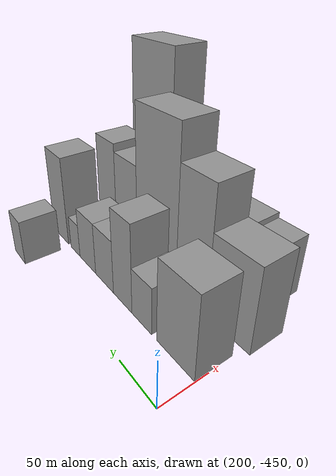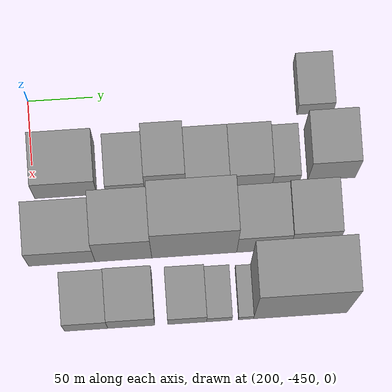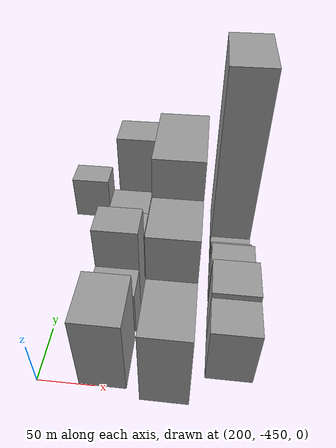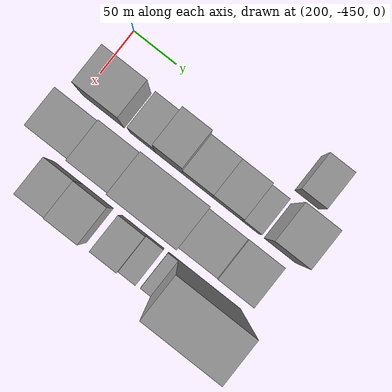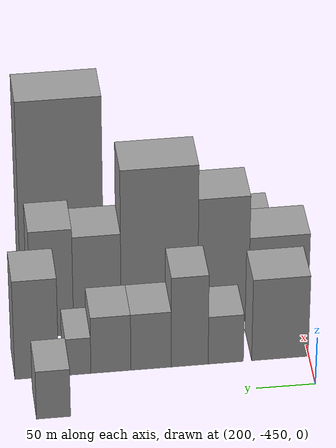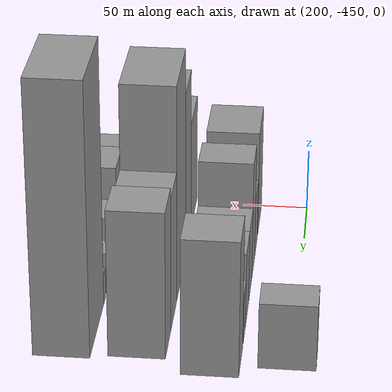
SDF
<sdf version="1.6">
 <world name="default">
  <model name="building_123">
   <static>1</static>
   <pose>204.0000 -228.6598 0 0.000000 0.000000 0.000000</pose>
   <link name="link">
    <pose>0 0 25.50 0 0 0</pose>
    <collision name="collision"><geometry><box><size>40.0000 28.3082 51.0000</size></box></geometry></collision>
    <visual name="visual">
     <cast_shadows>0</cast_shadows>
     <geometry><box><size>40.0000 28.3082 51.0000</size></box></geometry>
     <material>
      <script>
       <uri>model://grey_wall/materials/scripts</uri>
       <uri>model://grey_wall/materials/textures</uri>
       <name>vrc/grey_wall</name>
      </script>
     </material>
    </visual>
   </link>
  </model>
  <model name="building_169">
   <static>1</static>
   <pose>256.0000 -425.2638 0 0.000000 0.000000 0.000000</pose>
   <link name="link">
    <pose>0 0 43.50 0 0 0</pose>
    <collision name="collision"><geometry><box><size>40.0000 48.1281 87.0000</size></box></geometry></collision>
    <visual name="visual">
     <cast_shadows>0</cast_shadows>
     <geometry><box><size>40.0000 48.1281 87.0000</size></box></geometry>
     <material>
      <script>
       <uri>model://grey_wall/materials/scripts</uri>
       <uri>model://grey_wall/materials/textures</uri>
       <name>vrc/grey_wall</name>
      </script>
     </material>
    </visual>
   </link>
  </model>
  <model name="building_170">
   <static>1</static>
   <pose>256.0000 -379.2155 0 0.000000 0.000000 0.000000</pose>
   <link name="link">
    <pose>0 0 25.50 0 0 0</pose>
    <collision name="collision"><geometry><box><size>40.0000 29.9685 51.0000</size></box></geometry></collision>
    <visual name="visual">
     <cast_shadows>0</cast_shadows>
     <geometry><box><size>40.0000 29.9685 51.0000</size></box></geometry>
     <material>
      <script>
       <uri>model://grey_wall/materials/scripts</uri>
       <uri>model://grey_wall/materials/textures</uri>
       <name>vrc/grey_wall</name>
      </script>
     </material>
    </visual>
   </link>
  </model>
  <model name="building_171">
   <static>1</static>
   <pose>256.0000 -348.5457 0 0.000000 0.000000 0.000000</pose>
   <link name="link">
    <pose>0 0 48.00 0 0 0</pose>
    <collision name="collision"><geometry><box><size>40.0000 31.3711 96.0000</size></box></geometry></collision>
    <visual name="visual">
     <cast_shadows>0</cast_shadows>
     <geometry><box><size>40.0000 31.3711 96.0000</size></box></geometry>
     <material>
      <script>
       <uri>model://grey_wall/materials/scripts</uri>
       <uri>model://grey_wall/materials/textures</uri>
       <name>vrc/grey_wall</name>
      </script>
     </material>
    </visual>
   </link>
  </model>
  <model name="building_172">
   <static>1</static>
   <pose>256.0000 -315.7931 0 0.000000 0.000000 0.000000</pose>
   <link name="link">
    <pose>0 0 30.00 0 0 0</pose>
    <collision name="collision"><geometry><box><size>40.0000 34.1340 60.0000</size></box></geometry></collision>
    <visual name="visual">
     <cast_shadows>0</cast_shadows>
     <geometry><box><size>40.0000 34.1340 60.0000</size></box></geometry>
     <material>
      <script>
       <uri>model://grey_wall/materials/scripts</uri>
       <uri>model://grey_wall/materials/textures</uri>
       <name>vrc/grey_wall</name>
      </script>
     </material>
    </visual>
   </link>
  </model>
  <model name="building_173">
   <static>1</static>
   <pose>256.0000 -281.9143 0 0.000000 0.000000 0.000000</pose>
   <link name="link">
    <pose>0 0 30.00 0 0 0</pose>
    <collision name="collision"><geometry><box><size>40.0000 33.6235 60.0000</size></box></geometry></collision>
    <visual name="visual">
     <cast_shadows>0</cast_shadows>
     <geometry><box><size>40.0000 33.6235 60.0000</size></box></geometry>
     <material>
      <script>
       <uri>model://grey_wall/materials/scripts</uri>
       <uri>model://grey_wall/materials/textures</uri>
       <name>vrc/grey_wall</name>
      </script>
     </material>
    </visual>
   </link>
  </model>
  <model name="building_174">
   <static>1</static>
   <pose>256.0000 -254.5542 0 0.000000 0.000000 0.000000</pose>
   <link name="link">
    <pose>0 0 19.50 0 0 0</pose>
    <collision name="collision"><geometry><box><size>40.0000 21.0967 39.0000</size></box></geometry></collision>
    <visual name="visual">
     <cast_shadows>0</cast_shadows>
     <geometry><box><size>40.0000 21.0967 39.0000</size></box></geometry>
     <material>
      <script>
       <uri>model://grey_wall/materials/scripts</uri>
       <uri>model://grey_wall/materials/textures</uri>
       <name>vrc/grey_wall</name>
      </script>
     </material>
    </visual>
   </link>
  </model>
  <model name="building_175">
   <static>1</static>
   <pose>256.0000 -219.5533 0 0.000000 0.000000 0.000000</pose>
   <link name="link">
    <pose>0 0 52.50 0 0 0</pose>
    <collision name="collision"><geometry><box><size>40.0000 36.9052 105.0000</size></box></geometry></collision>
    <visual name="visual">
     <cast_shadows>0</cast_shadows>
     <geometry><box><size>40.0000 36.9052 105.0000</size></box></geometry>
     <material>
      <script>
       <uri>model://grey_wall/materials/scripts</uri>
       <uri>model://grey_wall/materials/textures</uri>
       <name>vrc/grey_wall</name>
      </script>
     </material>
    </visual>
   </link>
  </model>
  <model name="building_218">
   <static>1</static>
   <pose>308.0000 -431.4765 0 0.000000 0.000000 0.000000</pose>
   <link name="link">
    <pose>0 0 45.00 0 0 0</pose>
    <collision name="collision"><geometry><box><size>40.0000 51.3180 90.0000</size></box></geometry></collision>
    <visual name="visual">
     <cast_shadows>0</cast_shadows>
     <geometry><box><size>40.0000 51.3180 90.0000</size></box></geometry>
     <material>
      <script>
       <uri>model://grey_wall/materials/scripts</uri>
       <uri>model://grey_wall/materials/textures</uri>
       <name>vrc/grey_wall</name>
      </script>
     </material>
    </visual>
   </link>
  </model>
  <model name="building_219">
   <static>1</static>
   <pose>308.0000 -383.9578 0 0.000000 0.000000 0.000000</pose>
   <link name="link">
    <pose>0 0 67.50 0 0 0</pose>
    <collision name="collision"><geometry><box><size>40.0000 43.7195 135.0000</size></box></geometry></collision>
    <visual name="visual">
     <cast_shadows>0</cast_shadows>
     <geometry><box><size>40.0000 43.7195 135.0000</size></box></geometry>
     <material>
      <script>
       <uri>model://grey_wall/materials/scripts</uri>
       <uri>model://grey_wall/materials/textures</uri>
       <name>vrc/grey_wall</name>
      </script>
     </material>
    </visual>
   </link>
  </model>
  <model name="building_220">
   <static>1</static>
   <pose>308.0000 -329.3188 0 0.000000 0.000000 0.000000</pose>
   <link name="link">
    <pose>0 0 85.50 0 0 0</pose>
    <collision name="collision"><geometry><box><size>40.0000 65.5583 171.0000</size></box></geometry></collision>
    <visual name="visual">
     <cast_shadows>0</cast_shadows>
     <geometry><box><size>40.0000 65.5583 171.0000</size></box></geometry>
     <material>
      <script>
       <uri>model://grey_wall/materials/scripts</uri>
       <uri>model://grey_wall/materials/textures</uri>
       <name>vrc/grey_wall</name>
      </script>
     </material>
    </visual>
   </link>
  </model>
  <model name="building_221">
   <static>1</static>
   <pose>308.0000 -276.1619 0 0.000000 0.000000 0.000000</pose>
   <link name="link">
    <pose>0 0 52.50 0 0 0</pose>
    <collision name="collision"><geometry><box><size>40.0000 40.7556 105.0000</size></box></geometry></collision>
    <visual name="visual">
     <cast_shadows>0</cast_shadows>
     <geometry><box><size>40.0000 40.7556 105.0000</size></box></geometry>
     <material>
      <script>
       <uri>model://grey_wall/materials/scripts</uri>
       <uri>model://grey_wall/materials/textures</uri>
       <name>vrc/grey_wall</name>
      </script>
     </material>
    </visual>
   </link>
  </model>
  <model name="building_222">
   <static>1</static>
   <pose>308.0000 -237.5177 0 0.000000 0.000000 0.000000</pose>
   <link name="link">
    <pose>0 0 57.00 0 0 0</pose>
    <collision name="collision"><geometry><box><size>40.0000 36.5327 114.0000</size></box></geometry></collision>
    <visual name="visual">
     <cast_shadows>0</cast_shadows>
     <geometry><box><size>40.0000 36.5327 114.0000</size></box></geometry>
     <material>
      <script>
       <uri>model://grey_wall/materials/scripts</uri>
       <uri>model://grey_wall/materials/textures</uri>
       <name>vrc/grey_wall</name>
      </script>
     </material>
    </visual>
   </link>
  </model>
  <model name="building_264">
   <static>1</static>
   <pose>360.0000 -415.9835 0 0.000000 0.000000 0.000000</pose>
   <link name="link">
    <pose>0 0 33.00 0 0 0</pose>
    <collision name="collision"><geometry><box><size>40.0000 33.2368 66.0000</size></box></geometry></collision>
    <visual name="visual">
     <cast_shadows>0</cast_shadows>
     <geometry><box><size>40.0000 33.2368 66.0000</size></box></geometry>
     <material>
      <script>
       <uri>model://grey_wall/materials/scripts</uri>
       <uri>model://grey_wall/materials/textures</uri>
       <name>vrc/grey_wall</name>
      </script>
     </material>
    </visual>
   </link>
  </model>
  <model name="building_265">
   <static>1</static>
   <pose>360.0000 -381.2287 0 0.000000 0.000000 0.000000</pose>
   <link name="link">
    <pose>0 0 36.00 0 0 0</pose>
    <collision name="collision"><geometry><box><size>40.0000 36.2727 72.0000</size></box></geometry></collision>
    <visual name="visual">
     <cast_shadows>0</cast_shadows>
     <geometry><box><size>40.0000 36.2727 72.0000</size></box></geometry>
     <material>
      <script>
       <uri>model://grey_wall/materials/scripts</uri>
       <uri>model://grey_wall/materials/textures</uri>
       <name>vrc/grey_wall</name>
      </script>
     </material>
    </visual>
   </link>
  </model>
  <model name="building_266">
   <static>1</static>
   <pose>360.0000 -338.1346 0 0.000000 0.000000 0.000000</pose>
   <link name="link">
    <pose>0 0 25.50 0 0 0</pose>
    <collision name="collision"><geometry><box><size>40.0000 29.9154 51.0000</size></box></geometry></collision>
    <visual name="visual">
     <cast_shadows>0</cast_shadows>
     <geometry><box><size>40.0000 29.9154 51.0000</size></box></geometry>
     <material>
      <script>
       <uri>model://grey_wall/materials/scripts</uri>
       <uri>model://grey_wall/materials/textures</uri>
       <name>vrc/grey_wall</name>
      </script>
     </material>
    </visual>
   </link>
  </model>
  <model name="building_267">
   <static>1</static>
   <pose>360.0000 -313.4503 0 0.000000 0.000000 0.000000</pose>
   <link name="link">
    <pose>0 0 16.50 0 0 0</pose>
    <collision name="collision"><geometry><box><size>40.0000 19.4532 33.0000</size></box></geometry></collision>
    <visual name="visual">
     <cast_shadows>0</cast_shadows>
     <geometry><box><size>40.0000 19.4532 33.0000</size></box></geometry>
     <material>
      <script>
       <uri>model://grey_wall/materials/scripts</uri>
       <uri>model://grey_wall/materials/textures</uri>
       <name>vrc/grey_wall</name>
      </script>
     </material>
    </visual>
   </link>
  </model>
  <model name="building_268">
   <static>1</static>
   <pose>360.0000 -292.9397 0 0.000000 0.000000 0.000000</pose>
   <link name="link">
    <pose>0 0 12.00 0 0 0</pose>
    <collision name="collision"><geometry><box><size>40.0000 11.5679 24.0000</size></box></geometry></collision>
    <visual name="visual">
     <cast_shadows>0</cast_shadows>
     <geometry><box><size>40.0000 11.5679 24.0000</size></box></geometry>
     <material>
      <script>
       <uri>model://grey_wall/materials/scripts</uri>
       <uri>model://grey_wall/materials/textures</uri>
       <name>vrc/grey_wall</name>
      </script>
     </material>
    </visual>
   </link>
  </model>
  <model name="building_269">
   <static>1</static>
   <pose>360.0000 -251.1755 0 0.000000 0.000000 0.000000</pose>
   <link name="link">
    <pose>0 0 105.00 0 0 0</pose>
    <collision name="collision"><geometry><box><size>40.0000 71.9604 210.0000</size></box></geometry></collision>
    <visual name="visual">
     <cast_shadows>0</cast_shadows>
     <geometry><box><size>40.0000 71.9604 210.0000</size></box></geometry>
     <material>
      <script>
       <uri>model://grey_wall/materials/scripts</uri>
       <uri>model://grey_wall/materials/textures</uri>
       <name>vrc/grey_wall</name>
      </script>
     </material>
    </visual>
   </link>
  </model>
 </world>
</sdf>
